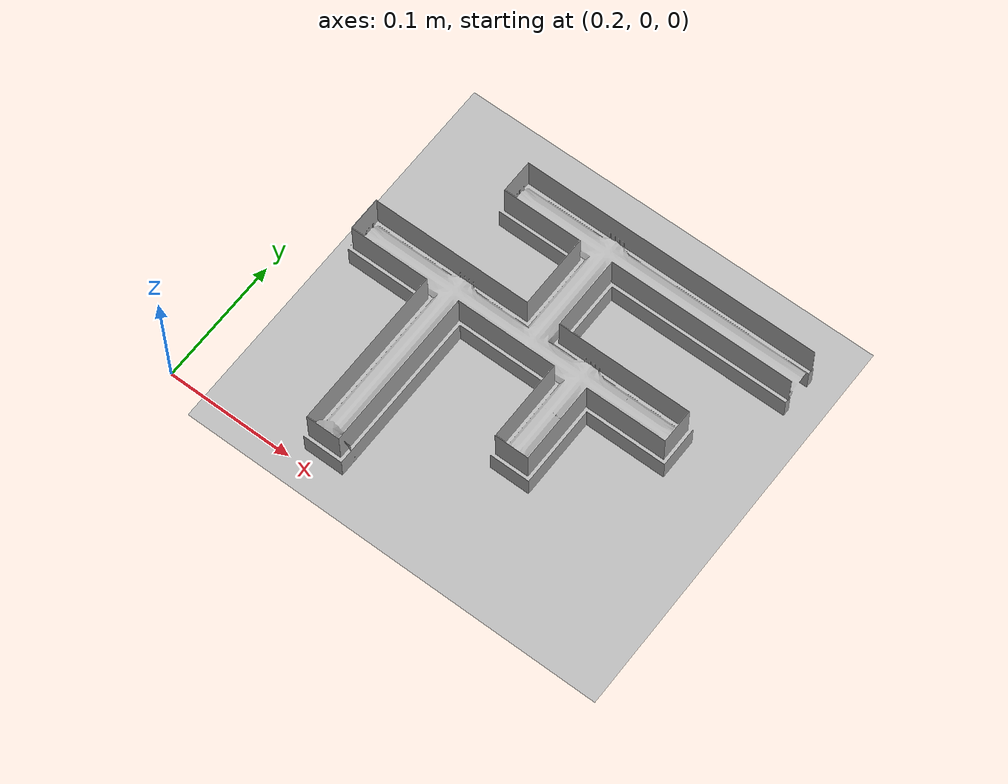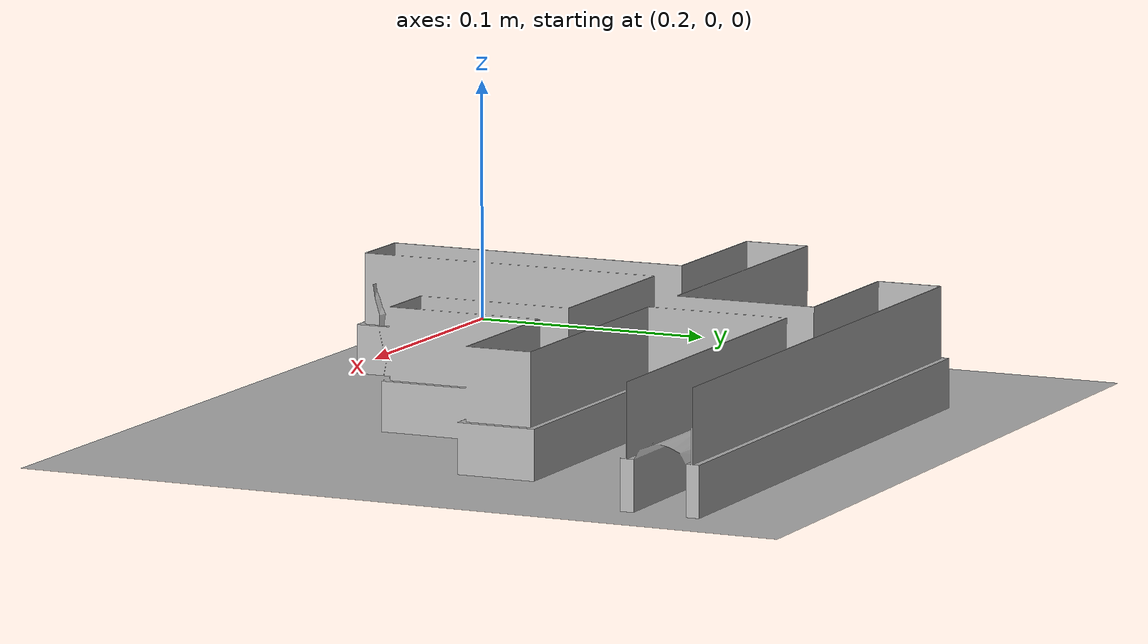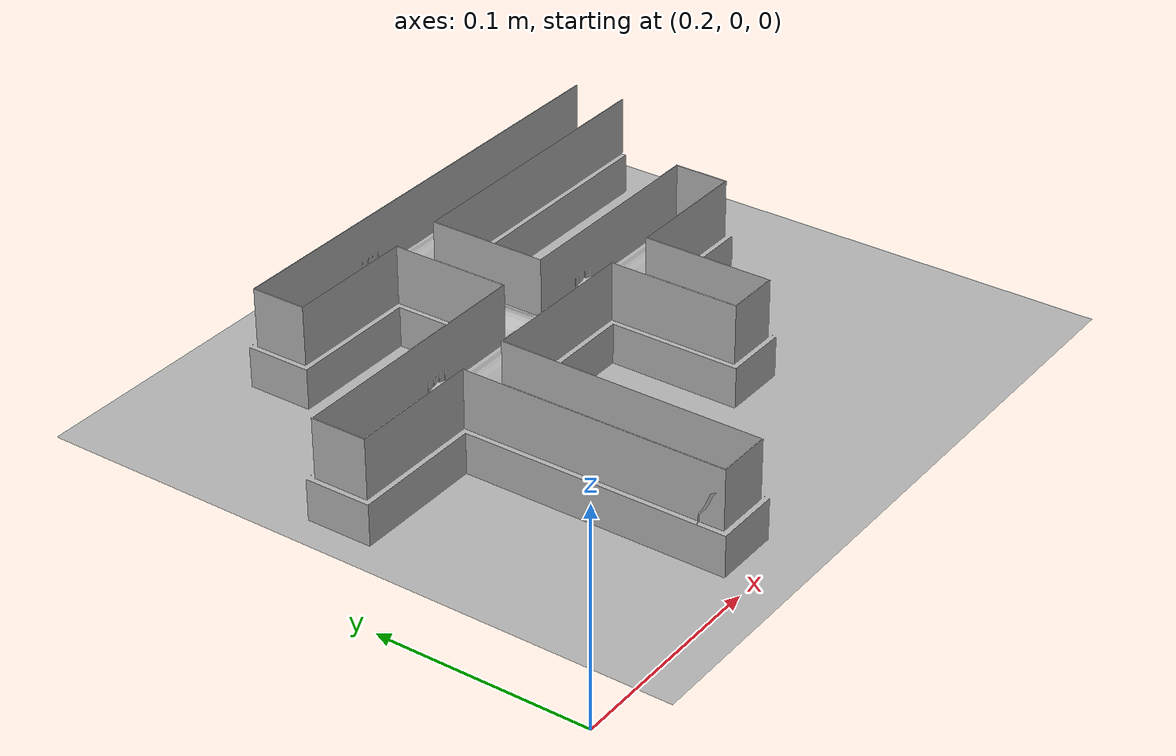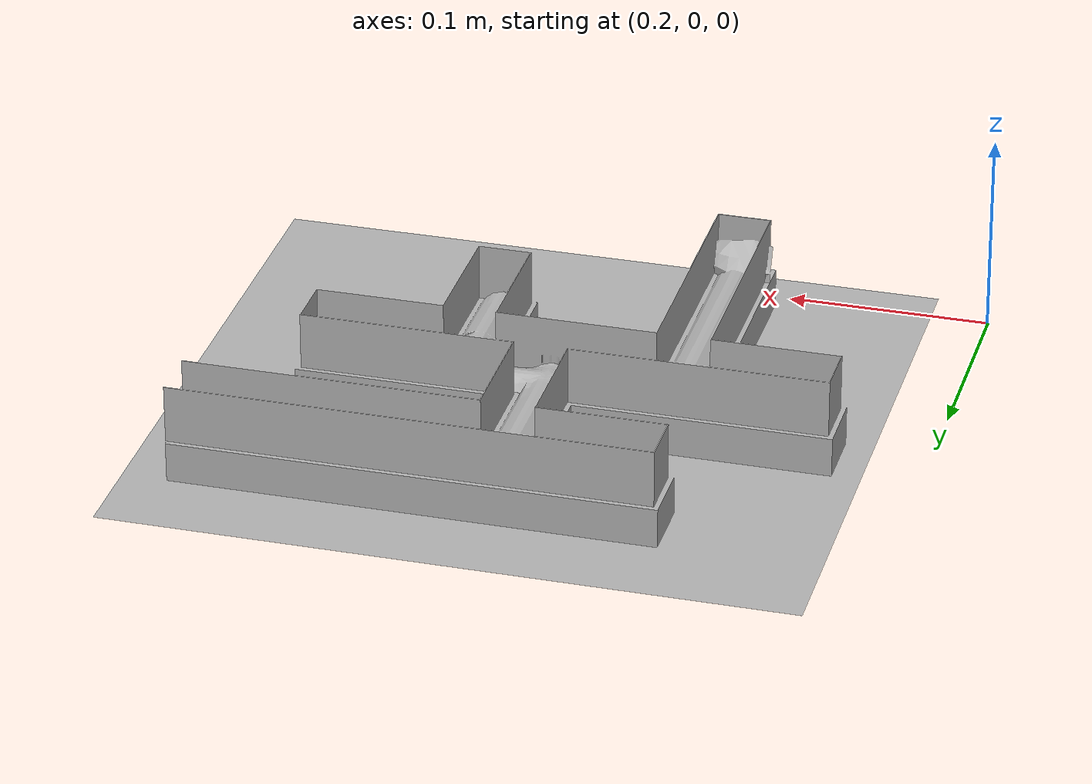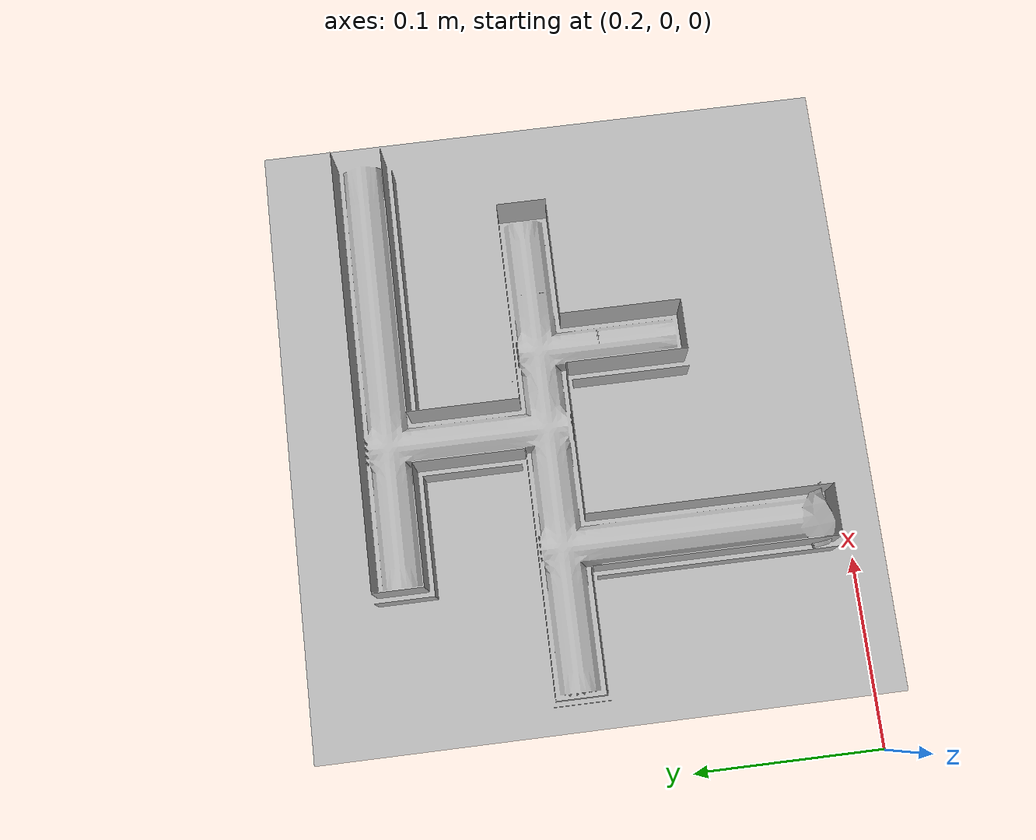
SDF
<?xml version="1.0"?>
<sdf version="1.6">
  <model name="tunnel_environment">
    <!-- Make the model static so it doesn't fall -->
    <static>true</static>

    <link name="tunnel_link">
      <!-- Visual representation -->
      <visual name="tunnel_visual">
        <geometry>
          <mesh>
            <uri>>model://tunnel1/meshes/gz_world.dae</uri>
          </mesh>
        </geometry>
        <material>
          <ambient>0.5 0.5 0.5 1</ambient>
          <diffuse>0.7 0.7 0.7 1</diffuse>
          <specular>0.2 0.2 0.2 1</specular>
        </material>
      </visual>

      <!-- Collision geometry -->
      <collision name="tunnel_collision">
        <geometry>
          <mesh>
            <uri>model://tunnel1/meshes/gz_world.dae</uri>
          </mesh>
        </geometry>
      </collision>
    </link>
  </model>
</sdf>
